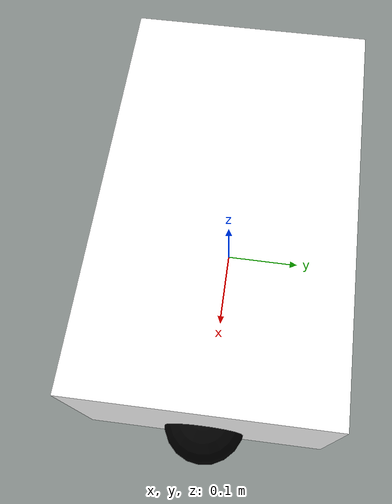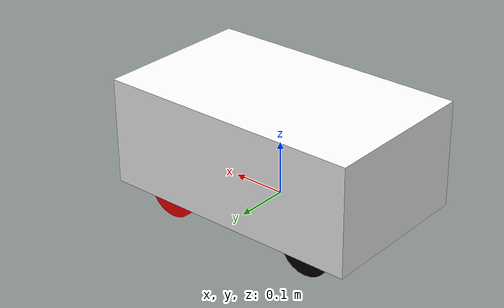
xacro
<?xml version="1.0"?>
<robot xmlns:xacro="http://www.ros.org/wiki/xacro" >

    <xacro:include filename="inertial_macros.xacro" />

    <material name="white">
        <color rgba="1 1 1 1" />
    </material>

    <material name="orange">
        <color rgba="1 0.3 0.1 1"/>
    </material>

    <material name="blue">
        <color rgba="0.2 0.2 1 1"/>
    </material>

    <material name="black">
        <color rgba="0 0 0 1"/>
    </material>

    <material name="red">
        <color rgba="1 0 0 1"/>
    </material>

    <!-- BASE LINK -->
    <joint name="chassis_joint" type="fixed">
        <parent link="base_link"/>
        <child link="chassis"/>
        <origin xyz="0 0 0.05"/>
    </joint>

    <link name="chassis">
        <visual>
            <origin xyz="0 0 0.05" rpy="0 0 0"/>
            <geometry>
                <box size="0.5 0.3 0.2"/>
            </geometry>
            <material name="white"/>
        </visual>
        <collision>
            <origin xyz="0 0 0.05" rpy="0 0 0"/>
            <geometry>
                <box size="0.5 0.3 0.2"/>
            </geometry>
        </collision>
            <!-- ... visual and collision here ... -->
            <xacro:inertial_box mass="0.5" x="0.5" y="0.3" z="0.2">
                <origin xyz="0 0 0.05" rpy="0 0 0"/>
            </xacro:inertial_box>
    </link>

    <link name="base_link">

    </link>

    <!-- LEFT FRONT WHEEL -->
    <joint name="left_front_wheel_joint" type="continuous">
        <parent link="base_link"/>
        <child link="left_front_wheel"/>
        <origin xyz="0.15 -0.1 0" rpy="-${pi/2} 0 0"/>
        <axis xyz="0 0 1"/>
    </joint>

    <link name="left_front_wheel">
        <visual>
            <geometry>
                <cylinder length="0.04" radius="0.05" />
            </geometry>
            <material name="orange"/>
        </visual>
            <!-- ... visual and collision here ... -->
            <xacro:inertial_cylinder mass="0.1" length="0.05" radius="0.05">
                <origin xyz="0 0 0" rpy="0 0 0"/>
            </xacro:inertial_cylinder>
        <collision>
            <origin xyz="0.15 -0.1 0" rpy="-${pi/2} 0 0"/>
            <geometry>
                <cylinder length="0.04" radius="0.05" />
            </geometry>
        </collision>
    </link>

    <!-- LEFT BACK WHEEL -->
    <joint name="left_back_wheel_joint" type="fixed">
        <parent link="base_link"/>
        <child link="left_back_wheel"/>
        <origin xyz="-0.15 -0.1 0" rpy="-${pi/2} 0 0"/>
        <axis xyz="0 0 1"/>
    </joint>

    <link name="left_back_wheel">
        <visual>
            <geometry>
                <cylinder length="0.04" radius="0.05" />
            </geometry>
            <material name="blue"/>
        </visual>
            <!-- ... visual and collision here ... -->
            <xacro:inertial_cylinder mass="0.1" length="0.05" radius="0.05">
                <origin xyz="0 0 0" rpy="0 0 0"/>
            </xacro:inertial_cylinder>
        <collision>
            <origin xyz="-0.15 -0.1 0" rpy="-${pi/2} 0 0"/>
            <geometry>
                <cylinder length="0.04" radius="0.05" />
            </geometry>
        </collision>
    </link>

    <!-- RIGHT FRONT WHEEL -->
    <joint name="right_front_wheel_joint" type="continuous">
        <parent link="base_link"/>
        <child link="right_front_wheel"/>
        <origin xyz="0.15 0.1 0" rpy="${pi/2} 0 0"/>
        <axis xyz="0 0 -1"/>
    </joint>

    <link name="right_front_wheel">
        <visual>
            <geometry>
                <cylinder length="0.04" radius="0.05" />
            </geometry>
            <material name="red"/>
        </visual>
            <!-- ... visual and collision here ... -->
            <xacro:inertial_cylinder mass="0.1" length="0.05" radius="0.05">
                <origin xyz="0 0 0" rpy="0 0 0"/>
            </xacro:inertial_cylinder>
         <collision>
            <origin xyz="0.15 0.1 0" rpy="-${pi/2} 0 0"/>
            <geometry>
                <cylinder length="0.04" radius="0.05" />
            </geometry>
        </collision>
    </link>

    <!-- RIGHT BACK WHEEL -->
    <joint name="right_back_wheel_joint" type="fixed">
        <parent link="base_link"/>
        <child link="right_back_wheel"/>
        <origin xyz="-0.15 0.1 0" rpy="${pi/2} 0 0"/>
        <axis xyz="0 0 -1"/>
    </joint>

    <link name="right_back_wheel">
        <visual>
            <geometry>
                <cylinder length="0.04" radius="0.05" />
            </geometry>
            <material name="black"/>
        </visual>
            <!-- ... visual and collision here ... -->
            <xacro:inertial_cylinder mass="0.1" length="0.05" radius="0.05">
                <origin xyz="0 0 0" rpy="0 0 0"/>
            </xacro:inertial_cylinder>
        <collision>
            <origin xyz="-0.15 0.1 0" rpy="-${pi/2} 0 0"/>
            <geometry>
                <cylinder length="0.04" radius="0.05" />
            </geometry>
        </collision>
    </link>

    <!-- CASTER WHEEL -->

    <joint name="caster_wheel_joint" type="fixed">
        <parent link="chassis"/>
        <child link="caster_wheel"/>
        <origin xyz="0.24 0 0" rpy="0 0 0"/>
    </joint>

    <link name="caster_wheel">
    <visual>
        <geometry>
            <sphere radius="0.05" />
        </geometry>
        <material name="black"/>
    </visual>
      <!-- ... visual and collision here ... -->
        <xacro:inertial_sphere mass="0.1" radius="0.05">
            <origin xyz="0 0 0" rpy="0 0 0"/>
        </xacro:inertial_sphere>
    </link>

</robot>

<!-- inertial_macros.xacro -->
<robot xmlns:xacro="http://www.ros.org/wiki/xacro" >

        <!-- Specify some standard inertial calculations https://en.wikipedia.org/wiki/List_of_moments_of_inertia -->
        <!-- These make use of xacro's mathematical functionality -->
    <xacro:macro name="inertial_sphere" params="mass radius *origin">
        <inertial>
            <xacro:insert_block name="origin"/>
            <mass value="${mass}" />
            <inertia ixx="${(2/5) * mass * (radius*radius)}" ixy="0.0" ixz="0.0"
                    iyy="${(2/5) * mass * (radius*radius)}" iyz="0.0"
                    izz="${(2/5) * mass * (radius*radius)}" />
        </inertial>
    </xacro:macro>

    <xacro:macro name="inertial_box" params="mass x y z *origin">
        <inertial>
            <xacro:insert_block name="origin"/>
            <mass value="${mass}" />
            <inertia ixx="${(1/12) * mass * (y*y+z*z)}" ixy="0.0" ixz="0.0"
                    iyy="${(1/12) * mass * (x*x+z*z)}" iyz="0.0"
                    izz="${(1/12) * mass * (x*x+y*y)}" />
        </inertial>
    </xacro:macro>

    <xacro:macro name="inertial_cylinder" params="mass length radius *origin">
        <inertial>
            <xacro:insert_block name="origin"/>
            <mass value="${mass}" />
            <inertia ixx="${(1/12) * mass * (3*radius*radius + length*length)}" ixy="0.0" ixz="0.0"
                    iyy="${(1/12) * mass * (3*radius*radius + length*length)}" iyz="0.0"
                    izz="${(1/2) * mass * (radius*radius)}" />
        </inertial>
    </xacro:macro>
</robot>
